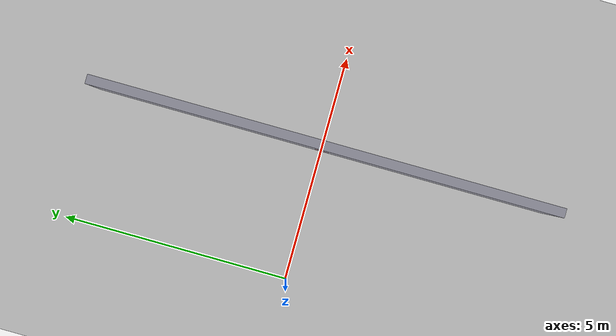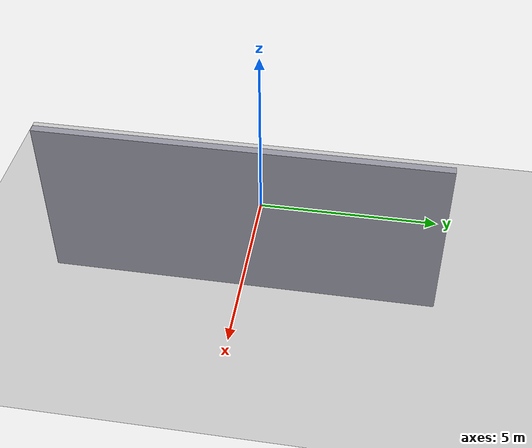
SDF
<?xml version="1.0" encoding="UTF-8"?>
<sdf version="1.9">
  <world name="default">
    <physics type="ode">
      <max_step_size>0.004</max_step_size>
      <real_time_factor>1.0</real_time_factor>
      <real_time_update_rate>250</real_time_update_rate>
    </physics>
    <gravity>0 0 -9.8</gravity>
    <magnetic_field>6e-06 2.3e-05 -4.2e-05</magnetic_field>
    <atmosphere type="adiabatic"/>
    <scene>
      <grid>false</grid>
      <ambient>0.4 0.4 0.4 1</ambient>
      <background>0.7 0.7 0.7 1</background>
      <shadows>true</shadows>
    </scene>
    <model name="ground_plane">
      <static>true</static>
      <link name="link">
        <collision name="collision">
          <geometry>
            <plane>
              <normal>0 0 1</normal>
              <size>1 1</size>
            </plane>
          </geometry>
          <surface>
            <friction>
              <ode/>
            </friction>
            <bounce/>
            <contact/>
          </surface>
        </collision>
        <visual name="visual">
          <geometry>
            <plane>
              <normal>0 0 1</normal>
              <size>500 500</size>
            </plane>
          </geometry>
          <material>
            <ambient>0.8 0.8 0.8 1</ambient>
            <diffuse>0.8 0.8 0.8 1</diffuse>
            <specular>0.8 0.8 0.8 1</specular>
          </material>
        </visual>
        <pose>0 0 0 0 -0 0</pose>
        <inertial>
          <pose>0 0 0 0 -0 0</pose>
          <mass>1</mass>
          <inertia>
            <ixx>1</ixx>
            <ixy>0</ixy>
            <ixz>0</ixz>
            <iyy>1</iyy>
            <iyz>0</iyz>
            <izz>1</izz>
          </inertia>
        </inertial>
        <enable_wind>false</enable_wind>
      </link>
      <pose>0 0 0 0 -0 0</pose>
      <self_collide>false</self_collide>
    </model>
    <model name="contact_wall">
      <static>true</static>
      <pose>3 0 2.25 0 0 0</pose>
      <link name="wall_link">
        <collision name="wall_collision">
          <geometry>
            <box>
              <size>0.2 10.0 4.5</size>
            </box>
          </geometry>
          <surface>
            <friction>
              <ode>
                <mu>0.2</mu>
                <mu2>0.2</mu2>
              </ode>
            </friction>
            <contact>
              <ode>
                <kp>1e6</kp>
                <kd>100</kd>
              </ode>
            </contact>
          </surface>
        </collision>
        <visual name="wall_visual">
          <geometry>
            <box>
              <size>0.2 10.0 4.5</size>
            </box>
          </geometry>
          <material>
            <ambient>0.6 0.6 0.65 1</ambient>
            <diffuse>0.6 0.6 0.65 1</diffuse>
            <specular>0.2 0.2 0.2 1</specular>
          </material>
        </visual>
        <visual name="target_contact_marker">
          <!-- Thin red disk on the near wall face: diameter 300 mm, center at world z=1.35 m. -->
          <pose>-0.101 0 -0.90 0 1.57079632679 0</pose>
          <geometry>
            <cylinder>
              <radius>0.15</radius>
              <length>0.002</length>
            </cylinder>
          </geometry>
          <material>
            <ambient>0.9 0.05 0.05 1</ambient>
            <diffuse>0.9 0.05 0.05 1</diffuse>
            <specular>0.2 0.02 0.02 1</specular>
          </material>
        </visual>
      </link>
    </model>

    <light name="sunUTC" type="directional">
      <pose>0 0 500 0 -0 0</pose>
      <cast_shadows>true</cast_shadows>
      <intensity>1</intensity>
      <direction>0.001 0.625 -0.78</direction>
      <diffuse>0.904 0.904 0.904 1</diffuse>
      <specular>0.271 0.271 0.271 1</specular>
      <attenuation>
        <range>2000</range>
        <linear>0</linear>
        <constant>1</constant>
        <quadratic>0</quadratic>
      </attenuation>
      <spot>
        <inner_angle>0</inner_angle>
        <outer_angle>0</outer_angle>
        <falloff>0</falloff>
      </spot>
    </light>
    <spherical_coordinates>
      <surface_model>EARTH_WGS84</surface_model>
      <world_frame_orientation>ENU</world_frame_orientation>
      <latitude_deg>47.397971057728974</latitude_deg>
      <longitude_deg> 8.546163739800146</longitude_deg>
      <elevation>0</elevation>
    </spherical_coordinates>
  </world>
</sdf>
